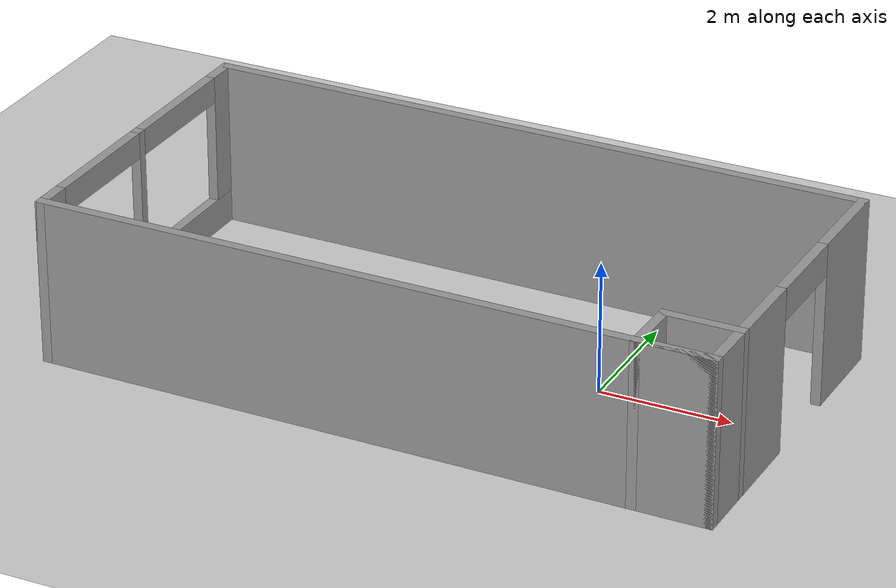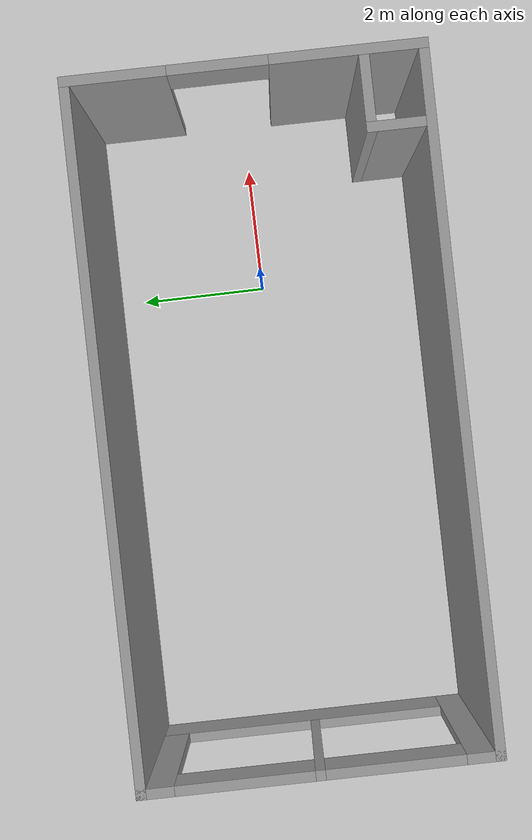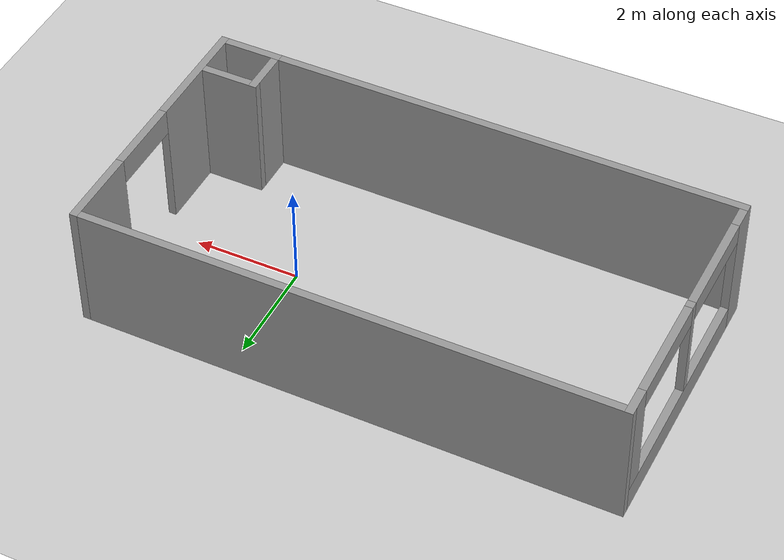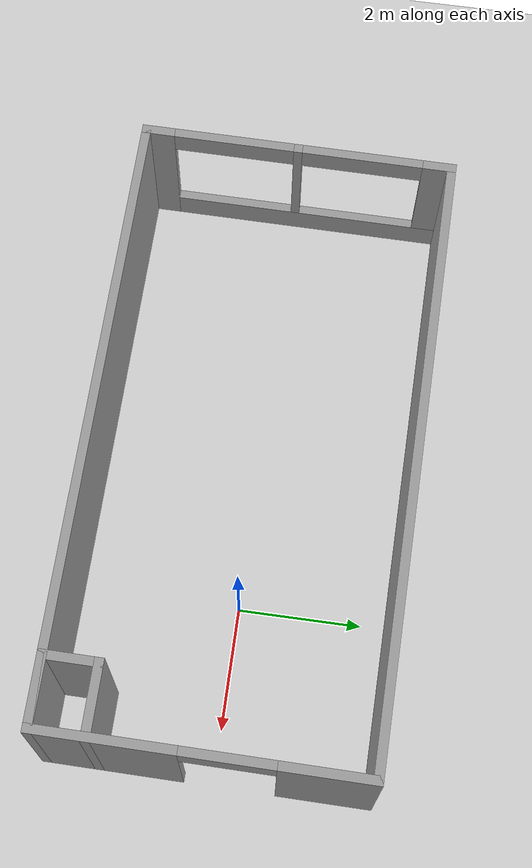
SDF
<sdf version="1.6">
 <world name="default">
  <plugin name="ros_interface_plugin" filename="librotors_gazebo_ros_interface_plugin.so"/>
  <light name="sun" type="directional">
   <pose>0 0 10 0 -0 0</pose>
   <diffuse>0.8 0.8 0.8 1</diffuse>
   <specular>0.1 0.1 0.1 1</specular>
   <attenuation>
    <range>1000</range>
    <constant>0.9</constant>
    <linear>0.01</linear>
    <quadratic>0.001</quadratic>
   </attenuation>
   <direction>-0.5 0.5 -1</direction>
  </light>
  <model name="ground_plane">
   <static>1</static>
   <link name="link">
    <collision name="collision">
     <geometry><plane><normal>0 0 1</normal><size>100 100</size></plane></geometry>
     <surface><friction><ode><mu>100</mu><mu2>50</mu2></ode></friction></surface>
    </collision>
    <visual name="visual">
     <cast_shadows>0</cast_shadows>
     <geometry><plane><normal>0 0 1</normal><size>100 100</size></plane></geometry>
     <material>
      <script><uri>file://media/materials/scripts/gazebo.material</uri><name>Gazebo/Grey</name></script>
     </material>
    </visual>
   </link>
  </model>
  <physics type="ode">
   <ode>
    <solver><type>quick</type><iters>50</iters><sor>1.3</sor></solver>
    <constraints>
     <cfm>0</cfm>
     <erp>0.2</erp>
     <contact_max_correcting_vel>100</contact_max_correcting_vel>
     <contact_surface_layer>0.001</contact_surface_layer>
    </constraints>
   </ode>
   <max_step_size>0.01</max_step_size>
   <real_time_factor>1</real_time_factor>
   <real_time_update_rate>100</real_time_update_rate>
   <gravity>0 0 -9.8</gravity>
  </physics>
  <atmosphere type="adiabatic"/>
  <scene><ambient>0.4 0.4 0.4 1</ambient><background>0.7 0.7 0.7 1</background><shadows>1</shadows></scene>
  <spherical_coordinates>
   <surface_model>EARTH_WGS84</surface_model>
   <latitude_deg>0</latitude_deg>
   <longitude_deg>0</longitude_deg>
   <elevation>0</elevation>
   <heading_deg>0</heading_deg>
  </spherical_coordinates>
  <model name="C222_model_0_0_1">
   <link name="Wall_57">
    <pose>-5.05 0 0 0 0 -1.5708</pose>
    <visual name="Wall_57_Visual_0">
     <pose>-1.48968 0 1.25 0 -0 0</pose>
     <geometry><box><size>2.27064 0.15 2.5</size></box></geometry>
     <material>
      <script><uri>file://media/materials/scripts/gazebo.material</uri><name>Gazebo/Grey</name></script>
      <ambient>1 1 1 1</ambient>
      <diffuse>0.7 0.7 0.7 1</diffuse>
      <specular>0.01 0.01 0.01 1</specular>
      <emissive>0 0 0 1</emissive>
     </material>
    </visual>
    <visual name="Wall_57_Visual_2">
     <pose>0.370638 0 2.252 0 -0 0</pose>
     <geometry><box><size>1.45 0.15 0.496</size></box></geometry>
     <material>
      <script><uri>file://media/materials/scripts/gazebo.material</uri><name>Gazebo/Grey</name></script>
      <ambient>1 1 1 1</ambient>
      <diffuse>0.7 0.7 0.7 1</diffuse>
      <specular>0.01 0.01 0.01 1</specular>
      <emissive>0 0 0 1</emissive>
     </material>
    </visual>
    <visual name="Wall_57_Visual_1">
     <pose>1.86032 0 1.25 0 -0 0</pose>
     <geometry><box><size>1.52936 0.15 2.5</size></box></geometry>
     <material>
      <script><uri>file://media/materials/scripts/gazebo.material</uri><name>Gazebo/Grey</name></script>
      <ambient>1 1 1 1</ambient>
      <diffuse>0.7 0.7 0.7 1</diffuse>
      <specular>0.01 0.01 0.01 1</specular>
      <emissive>0 0 0 1</emissive>
     </material>
    </visual>
    <collision name="Wall_57_Collision_2">
     <pose>0.370638 0 2.252 0 -0 0</pose>
     <geometry><box><size>1.45 0.15 0.496</size></box></geometry>
     <surface>
      <friction>
       <ode><mu>1</mu><mu2>1</mu2><fdir1>0 0 0</fdir1><slip1>0</slip1><slip2>0</slip2></ode>
       <torsional>
        <coefficient>1</coefficient>
        <patch_radius>0</patch_radius>
        <surface_radius>0</surface_radius>
        <use_patch_radius>1</use_patch_radius>
        <ode><slip>0</slip></ode>
       </torsional>
      </friction>
      <bounce><restitution_coefficient>0</restitution_coefficient><threshold>1e+06</threshold></bounce>
      <contact>
       <collide_without_contact>0</collide_without_contact>
       <collide_without_contact_bitmask>1</collide_without_contact_bitmask>
       <collide_bitmask>1</collide_bitmask>
       <ode>
        <soft_cfm>0</soft_cfm>
        <soft_erp>0.2</soft_erp>
        <kp>1e+13</kp>
        <kd>1</kd>
        <max_vel>0.01</max_vel>
        <min_depth>0</min_depth>
       </ode>
       <bullet>
        <split_impulse>1</split_impulse>
        <split_impulse_penetration_threshold>-0.01</split_impulse_penetration_threshold>
        <soft_cfm>0</soft_cfm>
        <soft_erp>0.2</soft_erp>
        <kp>1e+13</kp>
        <kd>1</kd>
       </bullet>
      </contact>
     </surface>
    </collision>
    <collision name="Wall_57_Collision_1">
     <pose>1.86032 0 1.25 0 -0 0</pose>
     <geometry><box><size>1.52936 0.15 2.5</size></box></geometry>
     <surface>
      <friction>
       <ode><mu>1</mu><mu2>1</mu2><fdir1>0 0 0</fdir1><slip1>0</slip1><slip2>0</slip2></ode>
       <torsional>
        <coefficient>1</coefficient>
        <patch_radius>0</patch_radius>
        <surface_radius>0</surface_radius>
        <use_patch_radius>1</use_patch_radius>
        <ode><slip>0</slip></ode>
       </torsional>
      </friction>
      <bounce><restitution_coefficient>0</restitution_coefficient><threshold>1e+06</threshold></bounce>
      <contact>
       <collide_without_contact>0</collide_without_contact>
       <collide_without_contact_bitmask>1</collide_without_contact_bitmask>
       <collide_bitmask>1</collide_bitmask>
       <ode>
        <soft_cfm>0</soft_cfm>
        <soft_erp>0.2</soft_erp>
        <kp>1e+13</kp>
        <kd>1</kd>
        <max_vel>0.01</max_vel>
        <min_depth>0</min_depth>
       </ode>
       <bullet>
        <split_impulse>1</split_impulse>
        <split_impulse_penetration_threshold>-0.01</split_impulse_penetration_threshold>
        <soft_cfm>0</soft_cfm>
        <soft_erp>0.2</soft_erp>
        <kp>1e+13</kp>
        <kd>1</kd>
       </bullet>
      </contact>
     </surface>
    </collision>
    <collision name="Wall_57_Collision_0">
     <pose>-1.48968 0 1.25 0 -0 0</pose>
     <geometry><box><size>2.27064 0.15 2.5</size></box></geometry>
     <surface>
      <friction>
       <ode><mu>1</mu><mu2>1</mu2><fdir1>0 0 0</fdir1><slip1>0</slip1><slip2>0</slip2></ode>
       <torsional>
        <coefficient>1</coefficient>
        <patch_radius>0</patch_radius>
        <surface_radius>0</surface_radius>
        <use_patch_radius>1</use_patch_radius>
        <ode><slip>0</slip></ode>
       </torsional>
      </friction>
      <bounce><restitution_coefficient>0</restitution_coefficient><threshold>1e+06</threshold></bounce>
      <contact>
       <collide_without_contact>0</collide_without_contact>
       <collide_without_contact_bitmask>1</collide_without_contact_bitmask>
       <collide_bitmask>1</collide_bitmask>
       <ode>
        <soft_cfm>0</soft_cfm>
        <soft_erp>0.2</soft_erp>
        <kp>1e+13</kp>
        <kd>1</kd>
        <max_vel>0.01</max_vel>
        <min_depth>0</min_depth>
       </ode>
       <bullet>
        <split_impulse>1</split_impulse>
        <split_impulse_penetration_threshold>-0.01</split_impulse_penetration_threshold>
        <soft_cfm>0</soft_cfm>
        <soft_erp>0.2</soft_erp>
        <kp>1e+13</kp>
        <kd>1</kd>
       </bullet>
      </contact>
     </surface>
    </collision>
   </link>
   <link name="Wall_59">
    <pose>0 2.55 0 0 -0 0</pose>
    <inertial>
     <mass>1</mass>
     <inertia><ixx>1</ixx><ixy>0</ixy><ixz>0</ixz><iyy>1</iyy><iyz>0</iyz><izz>1</izz></inertia>
    </inertial>
    <visual name="Wall_59_Visual">
     <pose>0 0 1.25 0 -0 0</pose>
     <geometry><box><size>10.25 0.15 2.5</size></box></geometry>
     <material>
      <script><uri>file://media/materials/scripts/gazebo.material</uri><name>Gazebo/Grey</name></script>
      <ambient>1 1 1 1</ambient>
      <diffuse>0.7 0.7 0.7 1</diffuse>
      <specular>0.01 0.01 0.01 1</specular>
      <emissive>0 0 0 1</emissive>
      <shader type="vertex"><normal_map>__default__</normal_map></shader>
      <lighting>1</lighting>
     </material>
    </visual>
    <collision name="Wall_59_Collision">
     <pose>0 0 1.25 0 -0 0</pose>
     <geometry><box><size>10.25 0.15 2.5</size></box></geometry>
     <surface>
      <friction>
       <ode><mu>1</mu><mu2>1</mu2><fdir1>0 0 0</fdir1><slip1>0</slip1><slip2>0</slip2></ode>
       <torsional>
        <coefficient>1</coefficient>
        <patch_radius>0</patch_radius>
        <surface_radius>0</surface_radius>
        <use_patch_radius>1</use_patch_radius>
        <ode><slip>0</slip></ode>
       </torsional>
      </friction>
      <bounce><restitution_coefficient>0</restitution_coefficient><threshold>1e+06</threshold></bounce>
      <contact>
       <collide_without_contact>0</collide_without_contact>
       <collide_without_contact_bitmask>1</collide_without_contact_bitmask>
       <collide_bitmask>1</collide_bitmask>
       <ode>
        <soft_cfm>0</soft_cfm>
        <soft_erp>0.2</soft_erp>
        <kp>1e+13</kp>
        <kd>1</kd>
        <max_vel>0.01</max_vel>
        <min_depth>0</min_depth>
       </ode>
       <bullet>
        <split_impulse>1</split_impulse>
        <split_impulse_penetration_threshold>-0.01</split_impulse_penetration_threshold>
        <soft_cfm>0</soft_cfm>
        <soft_erp>0.2</soft_erp>
        <kp>1e+13</kp>
        <kd>1</kd>
       </bullet>
      </contact>
     </surface>
    </collision>
   </link>
   <link name="Wall_60">
    <pose>5.05 0 0 0 0 -1.5708</pose>
    <visual name="Wall_60_Visual_2">
     <pose>0.000148 0 1.5 0 -0 0</pose>
     <geometry><box><size>0.143561 0.15 2</size></box></geometry>
     <material>
      <script><uri>file://media/materials/scripts/gazebo.material</uri><name>Gazebo/Grey</name></script>
      <ambient>1 1 1 1</ambient>
      <diffuse>0.7 0.7 0.7 1</diffuse>
      <specular>0.01 0.01 0.01 1</specular>
      <emissive>0 0 0 1</emissive>
     </material>
    </visual>
    <visual name="Wall_60_Visual_4">
     <pose>-1.07163 0 2.3 0 -0 0</pose>
     <geometry><box><size>2 0.15 0.4</size></box></geometry>
     <material>
      <script><uri>file://media/materials/scripts/gazebo.material</uri><name>Gazebo/Grey</name></script>
      <ambient>1 1 1 1</ambient>
      <diffuse>0.7 0.7 0.7 1</diffuse>
      <specular>0.01 0.01 0.01 1</specular>
      <emissive>0 0 0 1</emissive>
     </material>
    </visual>
    <visual name="Wall_60_Visual_3">
     <pose>2.34846 0 1.5 0 -0 0</pose>
     <geometry><box><size>0.553071 0.15 2</size></box></geometry>
     <material>
      <script><uri>file://media/materials/scripts/gazebo.material</uri><name>Gazebo/Grey</name></script>
      <ambient>1 1 1 1</ambient>
      <diffuse>0.7 0.7 0.7 1</diffuse>
      <specular>0.01 0.01 0.01 1</specular>
      <emissive>0 0 0 1</emissive>
     </material>
    </visual>
    <visual name="Wall_60_Visual_5">
     <pose>1.07193 0 2.3 0 -0 0</pose>
     <geometry><box><size>2 0.15 0.4</size></box></geometry>
     <material>
      <script><uri>file://media/materials/scripts/gazebo.material</uri><name>Gazebo/Grey</name></script>
      <ambient>1 1 1 1</ambient>
      <diffuse>0.7 0.7 0.7 1</diffuse>
      <specular>0.01 0.01 0.01 1</specular>
      <emissive>0 0 0 1</emissive>
     </material>
    </visual>
    <visual name="Wall_60_Visual_0">
     <pose>-2.34832 0 1.25 0 -0 0</pose>
     <geometry><box><size>0.553368 0.15 2.5</size></box></geometry>
     <material>
      <script><uri>file://media/materials/scripts/gazebo.material</uri><name>Gazebo/Grey</name></script>
      <ambient>1 1 1 1</ambient>
      <diffuse>0.7 0.7 0.7 1</diffuse>
      <specular>0.01 0.01 0.01 1</specular>
      <emissive>0 0 0 1</emissive>
     </material>
    </visual>
    <visual name="Wall_60_Visual_1">
     <pose>0.276684 0 0.25 0 -0 0</pose>
     <geometry><box><size>4.69663 0.15 0.5</size></box></geometry>
     <material>
      <script><uri>file://media/materials/scripts/gazebo.material</uri><name>Gazebo/Grey</name></script>
      <ambient>1 1 1 1</ambient>
      <diffuse>0.7 0.7 0.7 1</diffuse>
      <specular>0.01 0.01 0.01 1</specular>
      <emissive>0 0 0 1</emissive>
     </material>
    </visual>
    <collision name="Wall_60_Collision_2">
     <pose>0.000148 0 1.5 0 -0 0</pose>
     <geometry><box><size>0.143561 0.15 2</size></box></geometry>
     <surface>
      <friction>
       <ode><mu>1</mu><mu2>1</mu2><fdir1>0 0 0</fdir1><slip1>0</slip1><slip2>0</slip2></ode>
       <torsional>
        <coefficient>1</coefficient>
        <patch_radius>0</patch_radius>
        <surface_radius>0</surface_radius>
        <use_patch_radius>1</use_patch_radius>
        <ode><slip>0</slip></ode>
       </torsional>
      </friction>
      <bounce><restitution_coefficient>0</restitution_coefficient><threshold>1e+06</threshold></bounce>
      <contact>
       <collide_without_contact>0</collide_without_contact>
       <collide_without_contact_bitmask>1</collide_without_contact_bitmask>
       <collide_bitmask>1</collide_bitmask>
       <ode>
        <soft_cfm>0</soft_cfm>
        <soft_erp>0.2</soft_erp>
        <kp>1e+13</kp>
        <kd>1</kd>
        <max_vel>0.01</max_vel>
        <min_depth>0</min_depth>
       </ode>
       <bullet>
        <split_impulse>1</split_impulse>
        <split_impulse_penetration_threshold>-0.01</split_impulse_penetration_threshold>
        <soft_cfm>0</soft_cfm>
        <soft_erp>0.2</soft_erp>
        <kp>1e+13</kp>
        <kd>1</kd>
       </bullet>
      </contact>
     </surface>
    </collision>
    <collision name="Wall_60_Collision_5">
     <pose>1.07193 0 2.3 0 -0 0</pose>
     <geometry><box><size>2 0.15 0.4</size></box></geometry>
     <surface>
      <friction>
       <ode><mu>1</mu><mu2>1</mu2><fdir1>0 0 0</fdir1><slip1>0</slip1><slip2>0</slip2></ode>
       <torsional>
        <coefficient>1</coefficient>
        <patch_radius>0</patch_radius>
        <surface_radius>0</surface_radius>
        <use_patch_radius>1</use_patch_radius>
        <ode><slip>0</slip></ode>
       </torsional>
      </friction>
      <bounce><restitution_coefficient>0</restitution_coefficient><threshold>1e+06</threshold></bounce>
      <contact>
       <collide_without_contact>0</collide_without_contact>
       <collide_without_contact_bitmask>1</collide_without_contact_bitmask>
       <collide_bitmask>1</collide_bitmask>
       <ode>
        <soft_cfm>0</soft_cfm>
        <soft_erp>0.2</soft_erp>
        <kp>1e+13</kp>
        <kd>1</kd>
        <max_vel>0.01</max_vel>
        <min_depth>0</min_depth>
       </ode>
       <bullet>
        <split_impulse>1</split_impulse>
        <split_impulse_penetration_threshold>-0.01</split_impulse_penetration_threshold>
        <soft_cfm>0</soft_cfm>
        <soft_erp>0.2</soft_erp>
        <kp>1e+13</kp>
        <kd>1</kd>
       </bullet>
      </contact>
     </surface>
    </collision>
    <collision name="Wall_60_Collision_4">
     <pose>-1.07163 0 2.3 0 -0 0</pose>
     <geometry><box><size>2 0.15 0.4</size></box></geometry>
     <surface>
      <friction>
       <ode><mu>1</mu><mu2>1</mu2><fdir1>0 0 0</fdir1><slip1>0</slip1><slip2>0</slip2></ode>
       <torsional>
        <coefficient>1</coefficient>
        <patch_radius>0</patch_radius>
        <surface_radius>0</surface_radius>
        <use_patch_radius>1</use_patch_radius>
        <ode><slip>0</slip></ode>
       </torsional>
      </friction>
      <bounce><restitution_coefficient>0</restitution_coefficient><threshold>1e+06</threshold></bounce>
      <contact>
       <collide_without_contact>0</collide_without_contact>
       <collide_without_contact_bitmask>1</collide_without_contact_bitmask>
       <collide_bitmask>1</collide_bitmask>
       <ode>
        <soft_cfm>0</soft_cfm>
        <soft_erp>0.2</soft_erp>
        <kp>1e+13</kp>
        <kd>1</kd>
        <max_vel>0.01</max_vel>
        <min_depth>0</min_depth>
       </ode>
       <bullet>
        <split_impulse>1</split_impulse>
        <split_impulse_penetration_threshold>-0.01</split_impulse_penetration_threshold>
        <soft_cfm>0</soft_cfm>
        <soft_erp>0.2</soft_erp>
        <kp>1e+13</kp>
        <kd>1</kd>
       </bullet>
      </contact>
     </surface>
    </collision>
    <collision name="Wall_60_Collision_3">
     <pose>2.34846 0 1.5 0 -0 0</pose>
     <geometry><box><size>0.553071 0.15 2</size></box></geometry>
     <surface>
      <friction>
       <ode><mu>1</mu><mu2>1</mu2><fdir1>0 0 0</fdir1><slip1>0</slip1><slip2>0</slip2></ode>
       <torsional>
        <coefficient>1</coefficient>
        <patch_radius>0</patch_radius>
        <surface_radius>0</surface_radius>
        <use_patch_radius>1</use_patch_radius>
        <ode><slip>0</slip></ode>
       </torsional>
      </friction>
      <bounce><restitution_coefficient>0</restitution_coefficient><threshold>1e+06</threshold></bounce>
      <contact>
       <collide_without_contact>0</collide_without_contact>
       <collide_without_contact_bitmask>1</collide_without_contact_bitmask>
       <collide_bitmask>1</collide_bitmask>
       <ode>
        <soft_cfm>0</soft_cfm>
        <soft_erp>0.2</soft_erp>
        <kp>1e+13</kp>
        <kd>1</kd>
        <max_vel>0.01</max_vel>
        <min_depth>0</min_depth>
       </ode>
       <bullet>
        <split_impulse>1</split_impulse>
        <split_impulse_penetration_threshold>-0.01</split_impulse_penetration_threshold>
        <soft_cfm>0</soft_cfm>
        <soft_erp>0.2</soft_erp>
        <kp>1e+13</kp>
        <kd>1</kd>
       </bullet>
      </contact>
     </surface>
    </collision>
    <collision name="Wall_60_Collision_1">
     <pose>0.276684 0 0.25 0 -0 0</pose>
     <geometry><box><size>4.69663 0.15 0.5</size></box></geometry>
     <surface>
      <friction>
       <ode><mu>1</mu><mu2>1</mu2><fdir1>0 0 0</fdir1><slip1>0</slip1><slip2>0</slip2></ode>
       <torsional>
        <coefficient>1</coefficient>
        <patch_radius>0</patch_radius>
        <surface_radius>0</surface_radius>
        <use_patch_radius>1</use_patch_radius>
        <ode><slip>0</slip></ode>
       </torsional>
      </friction>
      <bounce><restitution_coefficient>0</restitution_coefficient><threshold>1e+06</threshold></bounce>
      <contact>
       <collide_without_contact>0</collide_without_contact>
       <collide_without_contact_bitmask>1</collide_without_contact_bitmask>
       <collide_bitmask>1</collide_bitmask>
       <ode>
        <soft_cfm>0</soft_cfm>
        <soft_erp>0.2</soft_erp>
        <kp>1e+13</kp>
        <kd>1</kd>
        <max_vel>0.01</max_vel>
        <min_depth>0</min_depth>
       </ode>
       <bullet>
        <split_impulse>1</split_impulse>
        <split_impulse_penetration_threshold>-0.01</split_impulse_penetration_threshold>
        <soft_cfm>0</soft_cfm>
        <soft_erp>0.2</soft_erp>
        <kp>1e+13</kp>
        <kd>1</kd>
       </bullet>
      </contact>
     </surface>
    </collision>
    <collision name="Wall_60_Collision_0">
     <pose>-2.34832 0 1.25 0 -0 0</pose>
     <geometry><box><size>0.553368 0.15 2.5</size></box></geometry>
     <surface>
      <friction>
       <ode><mu>1</mu><mu2>1</mu2><fdir1>0 0 0</fdir1><slip1>0</slip1><slip2>0</slip2></ode>
       <torsional>
        <coefficient>1</coefficient>
        <patch_radius>0</patch_radius>
        <surface_radius>0</surface_radius>
        <use_patch_radius>1</use_patch_radius>
        <ode><slip>0</slip></ode>
       </torsional>
      </friction>
      <bounce><restitution_coefficient>0</restitution_coefficient><threshold>1e+06</threshold></bounce>
      <contact>
       <collide_without_contact>0</collide_without_contact>
       <collide_without_contact_bitmask>1</collide_without_contact_bitmask>
       <collide_bitmask>1</collide_bitmask>
       <ode>
        <soft_cfm>0</soft_cfm>
        <soft_erp>0.2</soft_erp>
        <kp>1e+13</kp>
        <kd>1</kd>
        <max_vel>0.01</max_vel>
        <min_depth>0</min_depth>
       </ode>
       <bullet>
        <split_impulse>1</split_impulse>
        <split_impulse_penetration_threshold>-0.01</split_impulse_penetration_threshold>
        <soft_cfm>0</soft_cfm>
        <soft_erp>0.2</soft_erp>
        <kp>1e+13</kp>
        <kd>1</kd>
       </bullet>
      </contact>
     </surface>
    </collision>
   </link>
   <link name="Wall_61">
    <pose>0 -2.55 0 0 -0 3.14159</pose>
    <inertial>
     <mass>1000</mass>
     <inertia><ixx>1</ixx><ixy>0</ixy><ixz>0</ixz><iyy>1</iyy><iyz>0</iyz><izz>1</izz></inertia>
    </inertial>
    <visual name="Wall_61_Visual">
     <pose>0 0 1.25 0 -0 0</pose>
     <geometry><box><size>10.25 0.15 2.5</size></box></geometry>
     <material>
      <script><uri>file://media/materials/scripts/gazebo.material</uri><name>Gazebo/Grey</name></script>
      <ambient>1 1 1 1</ambient>
      <diffuse>0.7 0.7 0.7 1</diffuse>
      <specular>0.01 0.01 0.01 1</specular>
      <emissive>0 0 0 1</emissive>
      <shader type="vertex"><normal_map>__default__</normal_map></shader>
     </material>
    </visual>
    <collision name="Wall_61_Collision">
     <pose>0 0 1.25 0 -0 0</pose>
     <geometry><box><size>10.25 0.15 2.5</size></box></geometry>
     <surface>
      <friction>
       <ode><mu>1</mu><mu2>1</mu2><fdir1>0 0 0</fdir1><slip1>0</slip1><slip2>0</slip2></ode>
       <torsional>
        <coefficient>1</coefficient>
        <patch_radius>0</patch_radius>
        <surface_radius>0</surface_radius>
        <use_patch_radius>1</use_patch_radius>
        <ode><slip>0</slip></ode>
       </torsional>
      </friction>
      <bounce><restitution_coefficient>0</restitution_coefficient><threshold>1e+06</threshold></bounce>
      <contact>
       <collide_without_contact>0</collide_without_contact>
       <collide_without_contact_bitmask>1</collide_without_contact_bitmask>
       <collide_bitmask>1</collide_bitmask>
       <ode>
        <soft_cfm>0</soft_cfm>
        <soft_erp>0.2</soft_erp>
        <kp>1e+13</kp>
        <kd>1</kd>
        <max_vel>0.01</max_vel>
        <min_depth>0</min_depth>
       </ode>
       <bullet>
        <split_impulse>1</split_impulse>
        <split_impulse_penetration_threshold>-0.01</split_impulse_penetration_threshold>
        <soft_cfm>0</soft_cfm>
        <soft_erp>0.2</soft_erp>
        <kp>1e+13</kp>
        <kd>1</kd>
       </bullet>
      </contact>
     </surface>
    </collision>
   </link>
   <link name="Wall_63">
    <pose>-4.5 2.55 0 0 -0 0</pose>
    <visual name="Wall_63_Visual">
     <pose>0 0 1.25 0 -0 0</pose>
     <geometry><box><size>1.25 0.15 2.5</size></box></geometry>
     <material>
      <script><uri>file://media/materials/scripts/gazebo.material</uri><name>Gazebo/Grey</name></script>
      <ambient>1 1 1 1</ambient>
      <diffuse>0.7 0.7 0.7 1</diffuse>
      <specular>0.01 0.01 0.01 1</specular>
      <emissive>0 0 0 1</emissive>
     </material>
    </visual>
    <collision name="Wall_63_Collision">
     <pose>0 0 1.25 0 -0 0</pose>
     <geometry><box><size>1.25 0.15 2.5</size></box></geometry>
     <surface>
      <friction>
       <ode><mu>1</mu><mu2>1</mu2><fdir1>0 0 0</fdir1><slip1>0</slip1><slip2>0</slip2></ode>
       <torsional>
        <coefficient>1</coefficient>
        <patch_radius>0</patch_radius>
        <surface_radius>0</surface_radius>
        <use_patch_radius>1</use_patch_radius>
        <ode><slip>0</slip></ode>
       </torsional>
      </friction>
      <bounce><restitution_coefficient>0</restitution_coefficient><threshold>1e+06</threshold></bounce>
      <contact>
       <collide_without_contact>0</collide_without_contact>
       <collide_without_contact_bitmask>1</collide_without_contact_bitmask>
       <collide_bitmask>1</collide_bitmask>
       <ode>
        <soft_cfm>0</soft_cfm>
        <soft_erp>0.2</soft_erp>
        <kp>1e+13</kp>
        <kd>1</kd>
        <max_vel>0.01</max_vel>
        <min_depth>0</min_depth>
       </ode>
       <bullet>
        <split_impulse>1</split_impulse>
        <split_impulse_penetration_threshold>-0.01</split_impulse_penetration_threshold>
        <soft_cfm>0</soft_cfm>
        <soft_erp>0.2</soft_erp>
        <kp>1e+13</kp>
        <kd>1</kd>
       </bullet>
      </contact>
     </surface>
    </collision>
   </link>
   <link name="Wall_64">
    <pose>-3.95 2.125 0 0 0 -1.5708</pose>
    <visual name="Wall_64_Visual">
     <pose>0 0 1.25 0 -0 0</pose>
     <geometry><box><size>1 0.15 2.5</size></box></geometry>
     <material>
      <script><uri>file://media/materials/scripts/gazebo.material</uri><name>Gazebo/Grey</name></script>
      <ambient>1 1 1 1</ambient>
      <diffuse>0.7 0.7 0.7 1</diffuse>
      <specular>0.01 0.01 0.01 1</specular>
      <emissive>0 0 0 1</emissive>
     </material>
    </visual>
    <collision name="Wall_64_Collision">
     <pose>0 0 1.25 0 -0 0</pose>
     <geometry><box><size>1 0.15 2.5</size></box></geometry>
     <surface>
      <friction>
       <ode><mu>1</mu><mu2>1</mu2><fdir1>0 0 0</fdir1><slip1>0</slip1><slip2>0</slip2></ode>
       <torsional>
        <coefficient>1</coefficient>
        <patch_radius>0</patch_radius>
        <surface_radius>0</surface_radius>
        <use_patch_radius>1</use_patch_radius>
        <ode><slip>0</slip></ode>
       </torsional>
      </friction>
      <bounce><restitution_coefficient>0</restitution_coefficient><threshold>1e+06</threshold></bounce>
      <contact>
       <collide_without_contact>0</collide_without_contact>
       <collide_without_contact_bitmask>1</collide_without_contact_bitmask>
       <collide_bitmask>1</collide_bitmask>
       <ode>
        <soft_cfm>0</soft_cfm>
        <soft_erp>0.2</soft_erp>
        <kp>1e+13</kp>
        <kd>1</kd>
        <max_vel>0.01</max_vel>
        <min_depth>0</min_depth>
       </ode>
       <bullet>
        <split_impulse>1</split_impulse>
        <split_impulse_penetration_threshold>-0.01</split_impulse_penetration_threshold>
        <soft_cfm>0</soft_cfm>
        <soft_erp>0.2</soft_erp>
        <kp>1e+13</kp>
        <kd>1</kd>
       </bullet>
      </contact>
     </surface>
    </collision>
   </link>
   <link name="Wall_65">
    <pose>-4.5 1.7 0 0 -0 3.14159</pose>
    <visual name="Wall_65_Visual">
     <pose>0 0 1.25 0 -0 0</pose>
     <geometry><box><size>1.25 0.15 2.5</size></box></geometry>
     <material>
      <script><uri>file://media/materials/scripts/gazebo.material</uri><name>Gazebo/Grey</name></script>
      <ambient>1 1 1 1</ambient>
      <diffuse>0.7 0.7 0.7 1</diffuse>
      <specular>0.01 0.01 0.01 1</specular>
      <emissive>0 0 0 1</emissive>
     </material>
    </visual>
    <collision name="Wall_65_Collision">
     <pose>0 0 1.25 0 -0 0</pose>
     <geometry><box><size>1.25 0.15 2.5</size></box></geometry>
     <surface>
      <friction>
       <ode><mu>1</mu><mu2>1</mu2><fdir1>0 0 0</fdir1><slip1>0</slip1><slip2>0</slip2></ode>
       <torsional>
        <coefficient>1</coefficient>
        <patch_radius>0</patch_radius>
        <surface_radius>0</surface_radius>
        <use_patch_radius>1</use_patch_radius>
        <ode><slip>0</slip></ode>
       </torsional>
      </friction>
      <bounce><restitution_coefficient>0</restitution_coefficient><threshold>1e+06</threshold></bounce>
      <contact>
       <collide_without_contact>0</collide_without_contact>
       <collide_without_contact_bitmask>1</collide_without_contact_bitmask>
       <collide_bitmask>1</collide_bitmask>
       <ode>
        <soft_cfm>0</soft_cfm>
        <soft_erp>0.2</soft_erp>
        <kp>1e+13</kp>
        <kd>1</kd>
        <max_vel>0.01</max_vel>
        <min_depth>0</min_depth>
       </ode>
       <bullet>
        <split_impulse>1</split_impulse>
        <split_impulse_penetration_threshold>-0.01</split_impulse_penetration_threshold>
        <soft_cfm>0</soft_cfm>
        <soft_erp>0.2</soft_erp>
        <kp>1e+13</kp>
        <kd>1</kd>
       </bullet>
      </contact>
     </surface>
    </collision>
   </link>
   <static>1</static>
   <pose>-2.23319 -0.071302 0 0 -0 3.13354</pose>
  </model>
 </world>
</sdf>
